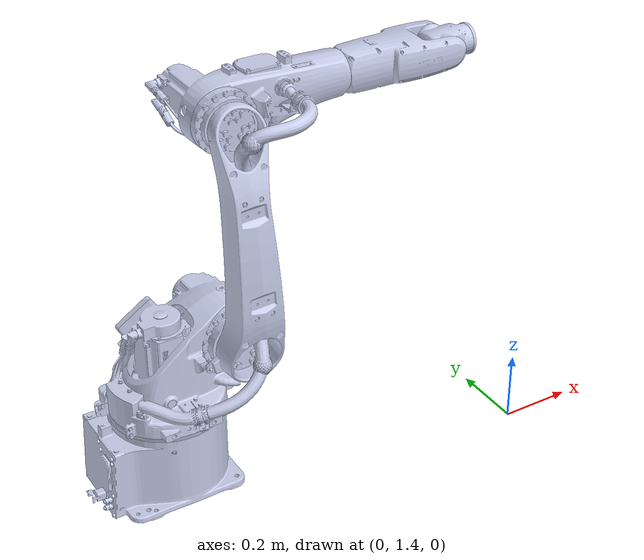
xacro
<?xml version="1.0" encoding="utf-8"?>
<robot name="kuka_kr10_r1440" xmlns:xacro="http://wiki.ros.org/xacro">
  <link
    name="base_link">
    <inertial>
      <origin
        xyz="-0.94792388319322 0.112998004819372 -1.68215865815263"
        rpy="0 0 0" />
      <mass
        value="20.6137385324781" />
      <inertia
        ixx="0.216074716467355"
        ixy="-0.00697519873174747"
        ixz="0.00126159186714733"
        iyy="0.303979205433131"
        iyz="8.3559462572306E-05"
        izz="0.274546679611052" />
    </inertial>
    <visual>
      <origin
        xyz="0 0 0"
        rpy="0 0 0" />
      <geometry>
        <mesh
          filename="package://my_robot_description/meshes/base_link.STL" />
      </geometry>
      <material
        name="">
        <color
          rgba="0.792156862745098 0.819607843137255 0.933333333333333 1" />
      </material>
    </visual>
    <collision>
      <origin
        xyz="0 0 0"
        rpy="0 0 0" />
      <geometry>
        <mesh
          filename="package://my_robot_description/meshes/base_link.STL" />
      </geometry>
    </collision>
  </link>
  <link
    name="main">
    <inertial>
      <origin
        xyz="0.0632284437537725 0.00929092839226131 0.151469595427842"
        rpy="0 0 0" />
      <mass
        value="16.5877058736608" />
      <inertia
        ixx="0.213364177309297"
        ixy="-0.00124862337724952"
        ixz="-0.0652742604919086"
        iyy="0.271566109902848"
        iyz="-0.00700450075433371"
        izz="0.280770579092271" />
    </inertial>
    <visual>
      <origin
        xyz="0 0 0"
        rpy="0 0 0" />
      <geometry>
        <mesh
          filename="package://my_robot_description/meshes/main.STL" />
      </geometry>
      <material
        name="">
        <color
          rgba="0.792156862745098 0.819607843137255 0.933333333333333 1" />
      </material>
    </visual>
    <collision>
      <origin
        xyz="0 0 0"
        rpy="0 0 0" />
      <geometry>
        <mesh
          filename="package://my_robot_description/meshes/main.STL" />
      </geometry>
    </collision>
  </link>
  <joint
    name="joint_1"
    type="revolute">
    <origin
      xyz="-0.92485 1.6825 0.20895"
      rpy="0 0 0" />
    <parent
      link="base_link" />
    <child
      link="main" />
    <axis
      xyz="0 0 1" />
    <limit
      lower="-2.9671"
      upper="2.9671"
      effort="1000.0"
      velocity="3.8397" />
  </joint>
  <link
    name="shoulder">
    <inertial>
      <origin
        xyz="0.000852090553587148 -0.104676845002504 0.279095391304661"
        rpy="0 0 0" />
      <mass
        value="5.98606302743919" />
      <inertia
        ixx="0.206272787110369"
        ixy="0.000117779084168488"
        ixz="0.00297582879107552"
        iyy="0.207693501721032"
        iyz="-0.00502616214328619"
        izz="0.0136280198187545" />
    </inertial>
    <visual>
      <origin
        xyz="0 0 0"
        rpy="0 0 0" />
      <geometry>
        <mesh
          filename="package://my_robot_description/meshes/shoulder.STL" />
      </geometry>
      <material
        name="">
        <color
          rgba="0.792156862745098 0.819607843137255 0.933333333333333 1" />
      </material>
    </visual>
    <collision>
      <origin
        xyz="0 0 0"
        rpy="0 0 0" />
      <geometry>
        <mesh
          filename="package://my_robot_description/meshes/shoulder.STL" />
      </geometry>
    </collision>
  </link>
  <joint
    name="joint_2"
    type="revolute">
    <origin
      xyz="0.17 -0.0619 0.21305"
      rpy="0 0 0" />
    <parent
      link="main" />
    <child
      link="shoulder" />
    <axis
      xyz="0 1 0" />
    <limit
      lower="-3.2289"
      upper="1.1345"
      effort="1000.0"
      velocity="3.6652" />
  </joint>
  <link
    name="elbow">
    <inertial>
      <origin
        xyz="0.0995106205138032 0.0616097767118939 0.00765775063038454"
        rpy="0 0 0" />
      <mass
        value="8.85888657119431" />
      <inertia
        ixx="0.058368913826774"
        ixy="0.00552342155062603"
        ixz="-0.00736609365417676"
        iyy="0.125408452190449"
        iyz="0.00188430263926034"
        izz="0.155760488369855" />
    </inertial>
    <visual>
      <origin
        xyz="0 0 0"
        rpy="0 0 0" />
      <geometry>
        <mesh
          filename="package://my_robot_description/meshes/elbow.STL" />
      </geometry>
      <material
        name="">
        <color
          rgba="0.792156862745098 0.819607843137255 0.933333333333333 1" />
      </material>
    </visual>
    <collision>
      <origin
        xyz="0 0 0"
        rpy="0 0 0" />
      <geometry>
        <mesh
          filename="package://my_robot_description/meshes/elbow.STL" />
      </geometry>
    </collision>
  </link>
  <joint
    name="joint_3"
    type="revolute">
    <origin
      xyz="0 0 0.61"
      rpy="0 0 0" />
    <parent
      link="shoulder" />
    <child
      link="elbow" />
    <axis
      xyz="0 1 0" />
    <limit
      lower="-2.3911"
      upper="2.8449"
      effort="1000.0"
      velocity="4.7124" />
  </joint>
  <link
    name="forearm">
    <inertial>
      <origin
        xyz="0.1578061107801 0.00351550466662398 -0.000100089951616811"
        rpy="0 0 0" />
      <mass
        value="3.65029981726324" />
      <inertia
        ixx="0.00917865890816277"
        ixy="-0.00142122363539938"
        ixz="3.7338999994283E-05"
        iyy="0.0307691099782471"
        iyz="2.55337921965769E-06"
        izz="0.0341742620308375" />
    </inertial>
    <visual>
      <origin
        xyz="0 0 0"
        rpy="0 0 0" />
      <geometry>
        <mesh
          filename="package://my_robot_description/meshes/forearm.STL" />
      </geometry>
      <material
        name="">
        <color
          rgba="0.792156862745098 0.819607843137255 0.933333333333333 1" />
      </material>
    </visual>
    <collision>
      <origin
        xyz="0 0 0"
        rpy="0 0 0" />
      <geometry>
        <mesh
          filename="package://my_robot_description/meshes/forearm.STL" />
      </geometry>
    </collision>
  </link>
  <joint
    name="joint_4"
    type="revolute">
    <origin
      xyz="0.35 0.0619 0.02"
      rpy="0 0 0" />
    <parent
      link="elbow" />
    <child
      link="forearm" />
    <axis
      xyz="1 0 0" />
    <limit
      lower="-3.2289"
      upper="3.2289"
      effort="1000.0"
      velocity="6.6497" />
  </joint>
  <link
    name="end_effector">
    <inertial>
      <origin
        xyz="0.0193967535443269 -0.000441140100691184 -4.63578473053339E-06"
        rpy="0 0 0" />
      <mass
        value="0.801084827998526" />
      <inertia
        ixx="0.000800317659267955"
        ixy="-1.20735069553458E-05"
        ixz="8.09258799294812E-08"
        iyy="0.00144153549696237"
        iyz="1.26613332380619E-07"
        izz="0.00150222102892646" />
    </inertial>
    <visual>
      <origin
        xyz="0 0 0"
        rpy="0 0 0" />
      <geometry>
        <mesh
          filename="package://my_robot_description/meshes/end_effector.STL" />
      </geometry>
      <material
        name="">
        <color
          rgba="0.792156862745098 0.819607843137255 0.933333333333333 1" />
      </material>
    </visual>
    <collision>
      <origin
        xyz="0 0 0"
        rpy="0 0 0" />
      <geometry>
        <mesh
          filename="package://my_robot_description/meshes/end_effector.STL" />
      </geometry>
    </collision>
  </link>
  <joint
    name="joint_5"
    type="revolute">
    <origin
      xyz="0.31 0 0"
      rpy="0 0 0" />
    <parent
      link="forearm" />
    <child
      link="end_effector" />
    <axis
      xyz="0 1 0" />
    <limit
      lower="-2.0944"
      upper="2.0944"
      effort="1000.0"
      velocity="5.428" />
  </joint>
  <link
    name="tip">
    <inertial>
      <origin
        xyz="0.00914664476705158 -2.48090437082737E-12 2.17469667571635E-05"
        rpy="0 0 0" />
      <mass
        value="0.0348816654893627" />
      <inertia
        ixx="2.95496260414526E-05"
        ixy="-1.6687104853903E-16"
        ixz="-1.89500850401313E-09"
        iyy="1.5160754996191E-05"
        iyz="-3.17526859772393E-15"
        izz="1.51561337859069E-05" />
    </inertial>
    <visual>
      <origin
        xyz="0 0 0"
        rpy="0 0 0" />
      <geometry>
        <mesh
          filename="package://my_robot_description/meshes/tip.STL" />
      </geometry>
      <material
        name="">
        <color
          rgba="0.792156862745098 0.819607843137255 0.933333333333333 1" />
      </material>
    </visual>
    <collision>
      <origin
        xyz="0 0 0"
        rpy="0 0 0" />
      <geometry>
        <mesh
          filename="package://my_robot_description/meshes/tip.STL" />
      </geometry>
    </collision>
  </link>
  <joint
    name="joint_6"
    type="revolute">
    <origin
      xyz="0.082 0.0005 0"
      rpy="2.7324 0 0" />
    <parent
      link="end_effector" />
    <child
      link="tip" />
    <axis
      xyz="1 0 0" />
    <limit
      lower="-6.1087"
      upper="6.1087"
      effort="1000.0"
      velocity="8.238" />
  </joint>

  <link name="tool_link" />

  <joint name="hand_tool_joint" type="fixed">
    <parent link="tip"/>
    <child link="tool_link"/>
    <origin xyz="0.03 0 0" rpy="0 0 0"/>
  </joint>
</robot>
